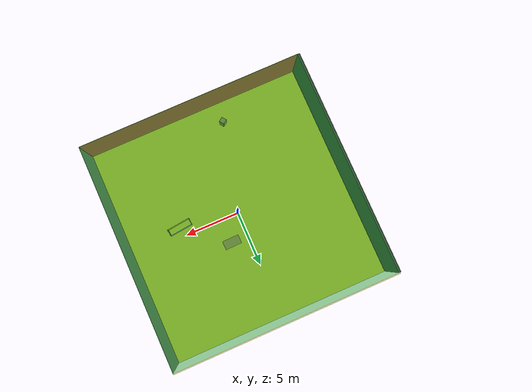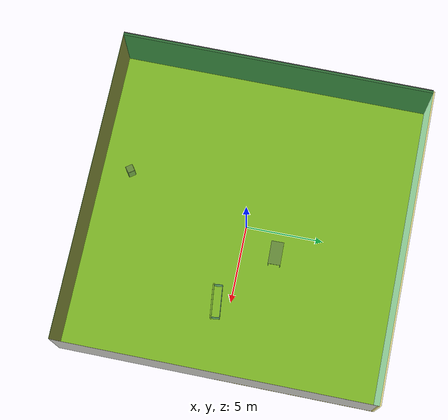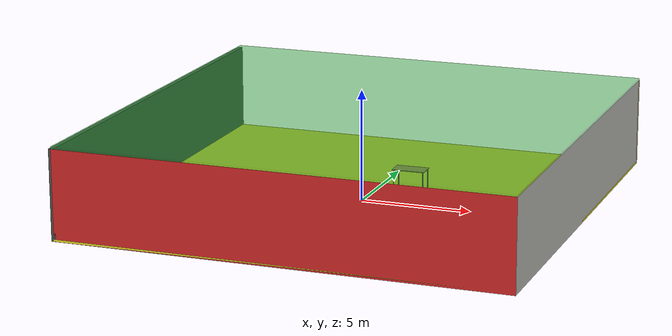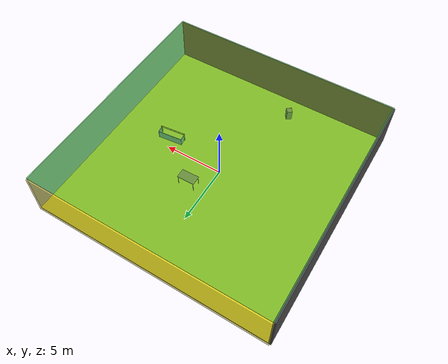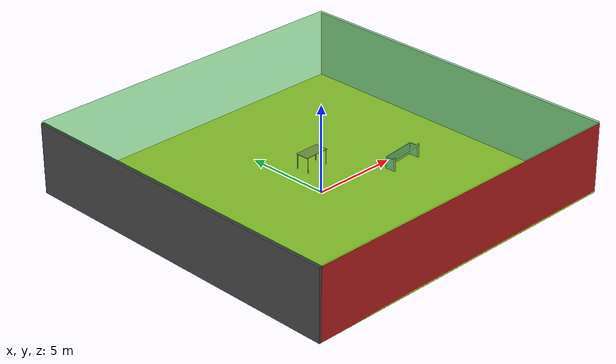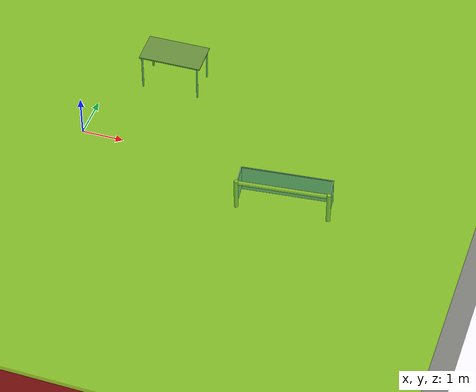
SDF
<sdf version="1.4">
 <world name="default">
  <physics type="ode">
   <max_step_size>0.001</max_step_size>
   <real_time_factor>1</real_time_factor>
   <real_time_update_rate>1000</real_time_update_rate>
   <gravity>0 0 -9.8</gravity>
  </physics>
  <scene><ambient>0.4 0.4 0.4 1</ambient><background>0.7 0.7 0.7 1</background><shadows>1</shadows></scene>
  <model name="Surrounding">
   <static>1</static>
   <link name="Ceiling">
    <collision name="Ceiling_Collision"><geometry><box><size>20 20 0.1</size></box></geometry></collision>
    <visual name="Ceiling_Visual">
     <geometry><box><size>20 20 0.1</size></box></geometry>
     <material>
      <script><uri>file://media/materials/scripts/gazebo.material</uri><name>Gazebo/GreenTransparent</name></script>
     </material>
    </visual>
    <pose>0 0 4.05 0 0 0</pose>
   </link>
   <link name="Wall_South">
    <collision name="Wall_South_Collision">
     <geometry><box><size>20 0 4</size></box></geometry>
     <pose>0 0 2 0 -0 0</pose>
    </collision>
    <visual name="Wall_South_Visual">
     <pose>0 0 2 0 -0 0</pose>
     <geometry><box><size>20 0 4</size></box></geometry>
     <material>
      <script><uri>file://media/materials/scripts/gazebo.material</uri><name>Gazebo/RedBright</name></script>
     </material>
    </visual>
    <velocity_decay><linear>0</linear><angular>0</angular></velocity_decay>
    <pose>0 -10 0 0 -0 0</pose>
   </link>
   <link name="Wall_East">
    <collision name="Wall_21_Collision">
     <geometry><box><size>20 0 4</size></box></geometry>
     <pose>0 0 2 0 -0 0</pose>
    </collision>
    <visual name="Wall_21_Visual">
     <pose>0 0 2 0 -0 0</pose>
     <geometry><box><size>20 0 4</size></box></geometry>
     <material>
      <script><uri>file://media/materials/scripts/gazebo.material</uri><name>Gazebo/CeilingTiled</name></script>
     </material>
    </visual>
    <velocity_decay><linear>0</linear><angular>0</angular></velocity_decay>
    <pose>10 0 0 0 -0 1.5708</pose>
   </link>
   <link name="Wall_North">
    <collision name="Wall_22_Collision">
     <geometry><box><size>20 0.2 4</size></box></geometry>
     <pose>0 0 2 0 -0 0</pose>
    </collision>
    <visual name="Wall_22_Visual">
     <pose>0 0 2 0 -0 0</pose>
     <geometry><box><size>20 0.2 4</size></box></geometry>
     <material>
      <script>
       <uri>file://media/materials/scripts/gazebo.material</uri>
       <name>Gazebo/YellowTransparent</name>
      </script>
     </material>
    </visual>
    <velocity_decay><linear>0</linear><angular>0</angular></velocity_decay>
    <pose>0 10 0 0 -0 0</pose>
   </link>
   <link name="Wall_West">
    <collision name="Wall_23_Collision">
     <geometry><box><size>20 0.2 4</size></box></geometry>
     <pose>0 0 2 0 -0 0</pose>
    </collision>
    <visual name="Wall_23_Visual">
     <pose>0 0 2 0 -0 0</pose>
     <geometry><box><size>20 0.2 4</size></box></geometry>
     <material>
      <script><uri>file://media/materials/scripts/gazebo.material</uri><name>Gazebo/Road</name></script>
     </material>
    </visual>
    <velocity_decay><linear>0</linear><angular>0</angular></velocity_decay>
    <pose>-10 0 0 0 0 -1.5708</pose>
   </link>
   <link name="Ground_link">
    <collision name="collision">
     <pose>0 0 .05 0 -0 0</pose>
     <geometry><box><size>20 20 0.1</size></box></geometry>
    </collision>
    <visual name="visual">
     <pose>0 0 .05 0 -0 0</pose>
     <geometry><box><size>20 20 0.1</size></box></geometry>
     <material>
      <script><uri>file://media/materials/scripts/gazebo.material</uri><name>Gazebo/YellowGlow</name></script>
     </material>
    </visual>
   </link>
   <static>1</static>
  </model>
  <spherical_coordinates>
   <surface_model>EARTH_WGS84</surface_model>
   <latitude_deg>0</latitude_deg>
   <longitude_deg>0</longitude_deg>
   <elevation>0</elevation>
   <heading_deg>0</heading_deg>
  </spherical_coordinates>
  <light name="lightball_0" type="diffuse">
   <diffuse>0.8 0.8 0.8 1</diffuse>
   <specular>0.2 0.2 0.2 1</specular>
   <attenuation>
    <range>100</range>
    <constant>0.7</constant>
    <linear>0.01</linear>
    <quadratic>0.001</quadratic>
   </attenuation>
   <direction>-0.5 0.1 -0.9</direction>
   <pose>-5.27054133608 9.43573599706 3.67768025418 0 0 0</pose>
  </light>
  <light name="lightball_1" type="diffuse">
   <diffuse>0.8 0.8 0.8 1</diffuse>
   <specular>0.2 0.2 0.2 1</specular>
   <attenuation>
    <range>100</range>
    <constant>0.7</constant>
    <linear>0.01</linear>
    <quadratic>0.001</quadratic>
   </attenuation>
   <direction>-0.5 0.1 -0.9</direction>
   <pose>4.5114099709 -1.89885831256 0.694465269245 0 0 0</pose>
  </light>
  <light name="lightball_2" type="diffuse">
   <diffuse>0.8 0.8 0.8 1</diffuse>
   <specular>0.2 0.2 0.2 1</specular>
   <attenuation>
    <range>100</range>
    <constant>0.7</constant>
    <linear>0.01</linear>
    <quadratic>0.001</quadratic>
   </attenuation>
   <direction>-0.5 0.1 -0.9</direction>
   <pose>9.56996645972 6.53253001736 2.57116227503 0 0 0</pose>
  </light>
  <light name="lightball_3" type="diffuse">
   <diffuse>0.8 0.8 0.8 1</diffuse>
   <specular>0.2 0.2 0.2 1</specular>
   <attenuation>
    <range>100</range>
    <constant>0.7</constant>
    <linear>0.01</linear>
    <quadratic>0.001</quadratic>
   </attenuation>
   <direction>-0.5 0.1 -0.9</direction>
   <pose>8.5174624526 -7.1273219421 3.48767409025 0 0 0</pose>
  </light>
  <light name="lightball_4" type="diffuse">
   <diffuse>0.8 0.8 0.8 1</diffuse>
   <specular>0.2 0.2 0.2 1</specular>
   <attenuation>
    <range>100</range>
    <constant>0.7</constant>
    <linear>0.01</linear>
    <quadratic>0.001</quadratic>
   </attenuation>
   <direction>-0.5 0.1 -0.9</direction>
   <pose>3.29156555902 0.00538318821972 3.40287747753 0 0 0</pose>
  </light>
  <light name="lightball_5" type="diffuse">
   <diffuse>0.8 0.8 0.8 1</diffuse>
   <specular>0.2 0.2 0.2 1</specular>
   <attenuation>
    <range>100</range>
    <constant>0.7</constant>
    <linear>0.01</linear>
    <quadratic>0.001</quadratic>
   </attenuation>
   <direction>-0.5 0.1 -0.9</direction>
   <pose>3.78682793298 -6.53954333949 2.84482440262 0 0 0</pose>
  </light>
  <light name="lightball_6" type="diffuse">
   <diffuse>0.8 0.8 0.8 1</diffuse>
   <specular>0.2 0.2 0.2 1</specular>
   <attenuation>
    <range>100</range>
    <constant>0.7</constant>
    <linear>0.01</linear>
    <quadratic>0.001</quadratic>
   </attenuation>
   <direction>-0.5 0.1 -0.9</direction>
   <pose>3.91017975607 -1.64697362595 2.35189713271 0 0 0</pose>
  </light>
  <light name="lightball_7" type="diffuse">
   <diffuse>0.8 0.8 0.8 1</diffuse>
   <specular>0.2 0.2 0.2 1</specular>
   <attenuation>
    <range>100</range>
    <constant>0.7</constant>
    <linear>0.01</linear>
    <quadratic>0.001</quadratic>
   </attenuation>
   <direction>-0.5 0.1 -0.9</direction>
   <pose>1.67872108614 -8.04776728729 2.18921500598 0 0 0</pose>
  </light>
  <light name="lightball_8" type="diffuse">
   <diffuse>0.8 0.8 0.8 1</diffuse>
   <specular>0.2 0.2 0.2 1</specular>
   <attenuation>
    <range>100</range>
    <constant>0.7</constant>
    <linear>0.01</linear>
    <quadratic>0.001</quadratic>
   </attenuation>
   <direction>-0.5 0.1 -0.9</direction>
   <pose>-2.98285169751 7.87193508754 1.96974825823 0 0 0</pose>
  </light>
  <include><uri>model://cabinet</uri><pose>-2.09732754879 -8.10156073722 0 0 0 0.620441340828</pose></include>
  <include><uri>model://table</uri><pose>1.51363995406 2.21560121728 0 0 0 0.0227274481033</pose></include>
  <include>
   <uri>model://robocup_3Dsim_goal</uri>
   <pose>5.2573500339 -1.13786838699 0 0 0 1.6787945011</pose>
  </include>
 </world>
</sdf>

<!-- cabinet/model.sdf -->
<sdf version="1.5">
  <model name="cabinet">
    <static>true</static>
    <link name="cabinet_bottom_plate">
      <inertial>
        <pose>0 0 -1 0 0 0</pose>
        <inertia>
          <ixx>2.050000</ixx>
          <ixy>0</ixy>
          <ixz>0</ixz>
          <iyy>2.050000</iyy>
          <iyz>0</iyz>
          <izz>2.050000</izz>
        </inertia>
        <mass>25.000000</mass>
      </inertial>
      <collision name="cabinet_bottom_plate_geom">
        <pose>0 0 0.010000 0 0 0</pose>
        <geometry>
          <box>
            <size>0.450000 0.450000 0.020000</size>
          </box>
        </geometry>
      </collision>
      <visual name="cabinet_bottom_plate_geom_visual">
        <pose>0 0 0.010000 0 0 0</pose>
        <geometry>
          <box>
            <size>0.450000 0.450000 0.020000</size>
          </box>
        </geometry>
        <material>
          <script>
            <uri>model://media/materials/scripts/gazebo.material</uri>
            <name>Gazebo/Wood</name>
          </script>
        </material>
      </visual>
      <collision name="cabinet_bottom_plate_geom_cabinet_back_plate">
        <pose>0.235000 0 0.510000 0 0 0</pose>
        <geometry>
          <box>
            <size>0.020000 0.450000 1.020000</size>
          </box>
        </geometry>
      </collision>
      <visual name="cabinet_bottom_plate_geom_cabinet_back_plate_visual">
        <pose>0.235000 0 0.510000 0 0 0</pose>
        <geometry>
          <box>
            <size>0.020000 0.450000 1.020000</size>
          </box>
        </geometry>
        <material>
          <script>
            <uri>model://media/materials/scripts/gazebo.material</uri>
            <name>Gazebo/Wood</name>
          </script>
        </material>
      </visual>
      <collision name="cabinet_bottom_plate_geom_cabinet_left_plate">
        <pose>0 0.235000 0.510000 0 0 0</pose>
        <geometry>
          <box>
            <size>0.450000 0.020000 1.020000</size>
          </box>
        </geometry>
      </collision>
      <visual name="cabinet_bottom_plate_geom_cabinet_left_plate_visual">
        <pose>0 0.235000 0.510000 0 0 0</pose>
        <geometry>
          <box>
            <size>0.450000 0.020000 1.020000</size>
          </box>
        </geometry>
        <material>
          <script>
            <uri>model://media/materials/scripts/gazebo.material</uri>
            <name>Gazebo/Wood</name>
          </script>
        </material>
      </visual>
      <collision name="cabinet_bottom_plate_geom_cabinet_middle_plate">
        <pose>0 0 0.510000 0 0 0</pose>
        <geometry>
          <box>
            <size>0.450000 0.450000 0.020000</size>
          </box>
        </geometry>
      </collision>
      <visual name="cabinet_bottom_plate_geom_cabinet_middle_plate_visual">
        <pose>0 0 0.510000 0 0 0</pose>
        <geometry>
          <box>
            <size>0.450000 0.450000 0.020000</size>
          </box>
        </geometry>
        <material>
          <script>
            <uri>model://media/materials/scripts/gazebo.material</uri>
            <name>Gazebo/Wood</name>
          </script>
        </material>
      </visual>
      <collision name="cabinet_bottom_plate_geom_cabinet_right_plate">
        <pose>0 -0.235000 0.510000 0 0 0</pose>
        <geometry>
          <box>
            <size>0.450000 0.020000 1.020000</size>
          </box>
        </geometry>
      </collision>
      <visual name="cabinet_bottom_plate_geom_cabinet_right_plate_visual">
        <pose>0 -0.235000 0.510000 0 0 0</pose>
        <geometry>
          <box>
            <size>0.450000 0.020000 1.020000</size>
          </box>
        </geometry>
        <material>
          <script>
            <uri>model://media/materials/scripts/gazebo.material</uri>
            <name>Gazebo/Wood</name>
          </script>
        </material>
      </visual>
      <collision name="cabinet_bottom_plate_geom_cabinet_top_plate">
        <pose>0 0 1.010000 0 0 0</pose>
        <geometry>
          <box>
            <size>0.450000 0.450000 0.020000</size>
          </box>
        </geometry>
      </collision>
      <visual name="cabinet_bottom_plate_geom_cabinet_top_plate_visual">
        <pose>0 0 1.010000 0 0 0</pose>
        <geometry>
          <box>
            <size>0.450000 0.450000 0.020000</size>
          </box>
        </geometry>
        <material>
          <script>
            <uri>model://media/materials/scripts/gazebo.material</uri>
            <name>Gazebo/Wood</name>
          </script>
        </material>
      </visual>
    </link>
  </model>
</sdf>

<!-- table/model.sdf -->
<sdf version="1.5">
  <model name="table">
    <static>true</static>
    <link name="link">
      <collision name="surface">
        <pose>0 0 1.0 0 0 0</pose>
        <geometry>
          <box>
            <size>1.5 0.8 0.03</size>
          </box>
        </geometry>
        <surface>
          <friction>
            <ode>
              <mu>0.6</mu>
              <mu2>0.6</mu2>
            </ode>
          </friction>
        </surface>
      </collision>
      <visual name="visual1">
        <pose>0 0 1.0 0 0 0</pose>
        <geometry>
          <box>
            <size>1.5 0.8 0.03</size>
          </box>
        </geometry>
        <material>
          <script>
            <uri>model://media/materials/scripts/gazebo.material</uri>
            <name>Gazebo/Wood</name>
          </script>
        </material>
      </visual>
      <collision name="front_left_leg">
        <pose>0.68 0.38 0.5 0 0 0</pose>
        <geometry>
          <cylinder>
            <radius>0.02</radius>
            <length>1.0</length>
          </cylinder>
        </geometry>
      </collision>
      <visual name="front_left_leg">
        <pose>0.68 0.38 0.5 0 0 0</pose>
        <geometry>
          <cylinder>
            <radius>0.02</radius>
            <length>1.0</length>
          </cylinder>
        </geometry>
        <material>
          <script>
            <uri>model://media/materials/scripts/gazebo.material</uri>
            <name>Gazebo/Grey</name>
          </script>
        </material>
      </visual>
      <collision name="front_right_leg">
        <pose>0.68 -0.38 0.5 0 0 0</pose>
        <geometry>
          <cylinder>
            <radius>0.02</radius>
            <length>1.0</length>
          </cylinder>
        </geometry>
      </collision>
      <visual name="front_right_leg">
        <pose>0.68 -0.38 0.5 0 0 0</pose>
        <geometry>
          <cylinder>
            <radius>0.02</radius>
            <length>1.0</length>
          </cylinder>
        </geometry>
        <material>
          <script>
            <uri>model://media/materials/scripts/gazebo.material</uri>
            <name>Gazebo/Grey</name>
          </script>
        </material>
      </visual>
      <collision name="back_right_leg">
        <pose>-0.68 -0.38 0.5 0 0 0</pose>
        <geometry>
          <cylinder>
            <radius>0.02</radius>
            <length>1.0</length>
          </cylinder>
        </geometry>
      </collision>
      <visual name="back_right_leg">
        <pose>-0.68 -0.38 0.5 0 0 0</pose>
        <geometry>
          <cylinder>
            <radius>0.02</radius>
            <length>1.0</length>
          </cylinder>
        </geometry>
        <material>
          <script>
            <uri>model://media/materials/scripts/gazebo.material</uri>
            <name>Gazebo/Grey</name>
          </script>
        </material>
      </visual>
      <collision name="back_left_leg">
        <pose>-0.68 0.38 0.5 0 0 0</pose>
        <geometry>
          <cylinder>
            <radius>0.02</radius>
            <length>1.0</length>
          </cylinder>
        </geometry>
      </collision>
      <visual name="back_left_leg">
        <pose>-0.68 0.38 0.5 0 0 0</pose>
        <geometry>
          <cylinder>
            <radius>0.02</radius>
            <length>1.0</length>
          </cylinder>
        </geometry>
        <material>
          <script>
            <uri>model://media/materials/scripts/gazebo.material</uri>
            <name>Gazebo/Grey</name>
          </script>
        </material>
      </visual>
    </link>
  </model>
</sdf>

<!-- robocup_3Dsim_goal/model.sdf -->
<sdf version="1.5">
  <model name="robocup_3d_goal">
    <static>true</static>
    <link name="left_post">
      <pose>0 1.05 0.45 0 0 0</pose>
      <collision name="collision">
        <geometry>
          <cylinder>
            <radius>0.05</radius>
            <length>0.9</length>
          </cylinder>
        </geometry>
      </collision>
      <visual name="visual">
        <geometry>
          <cylinder>
            <radius>0.05</radius>
            <length>0.9</length>
          </cylinder>
        </geometry>
        <material>
          <script>
            <uri>file://media/materials/scripts/gazebo.material</uri>
            <name>Gazebo/ZincYellow</name>
          </script>
        </material>
      </visual>
    </link>
    <link name="left_support_horiz_lower">
      <pose>0.30 1.05 0.01 0 0 0</pose>
      <collision name="collision">
        <geometry>
          <box>
            <size>0.50 0.02 0.02</size>
          </box>
        </geometry>
      </collision>
      <visual name="visual">
        <geometry>
          <box>
            <size>0.50 0.02 0.02</size>
          </box>
        </geometry>
        <material>
          <script>
            <uri>file://media/materials/scripts/gazebo.material</uri>
            <name>Gazebo/White</name>
          </script>
        </material>
      </visual>
    </link>
    <link name="left_support_horiz_upper">
      <pose>0.30 1.05 0.79 0 0 0</pose>
      <collision name="collision">
        <geometry>
          <box>
            <size>0.50 0.02 0.02</size>
          </box>
        </geometry>
      </collision>
      <visual name="visual">
        <geometry>
          <box>
            <size>0.50 0.02 0.02</size>
          </box>
        </geometry>
        <material>
          <script>
            <uri>file://media/materials/scripts/gazebo.material</uri>
            <name>Gazebo/White</name>
          </script>
        </material>
      </visual>
    </link>
    <link name="left_support_vertical">
      <pose>0.56 1.05 0.4 0 1.5708 0</pose>
      <collision name="collision">
        <geometry>
          <box>
            <size>0.80 0.02 0.02</size>
          </box>
        </geometry>
      </collision>
      <visual name="visual">
        <geometry>
          <box>
            <size>0.80 0.02 0.02</size>
          </box>
        </geometry>
        <material>
          <script>
            <uri>file://media/materials/scripts/gazebo.material</uri>
            <name>Gazebo/White</name>
          </script>
        </material>
      </visual>
    </link>
    <link name="right_support_horiz_lower">
      <pose>0.30 -1.05 0.01 0 0 0</pose>
      <collision name="collision">
        <geometry>
          <box>
            <size>0.50 0.02 0.02</size>
          </box>
        </geometry>
      </collision>
      <visual name="visual">
        <geometry>
          <box>
            <size>0.50 0.02 0.02</size>
          </box>
        </geometry>
        <material>
          <script>
            <uri>file://media/materials/scripts/gazebo.material</uri>
            <name>Gazebo/White</name>
          </script>
        </material>
      </visual>
    </link>
    <link name="right_support_horiz_upper">
      <pose>0.30 -1.05 0.79 0 0 0</pose>
      <collision name="collision">
        <geometry>
          <box>
            <size>0.50 0.02 0.02</size>
          </box>
        </geometry>
      </collision>
      <visual name="visual">
        <geometry>
          <box>
            <size>0.50 0.02 0.02</size>
          </box>
        </geometry>
        <material>
          <script>
            <uri>file://media/materials/scripts/gazebo.material</uri>
            <name>Gazebo/White</name>
          </script>
        </material>
      </visual>
    </link>
    <link name="right_support_vertical">
      <pose>0.56 -1.05 0.4 0 1.5708 0</pose>
      <collision name="collision">
        <geometry>
          <box>
            <size>0.80 0.02 0.02</size>
          </box>
        </geometry>
      </collision>
      <visual name="visual">
        <geometry>
          <box>
            <size>0.80 0.02 0.02</size>
          </box>
        </geometry>
        <material>
          <script>
            <uri>file://media/materials/scripts/gazebo.material</uri>
            <name>Gazebo/White</name>
          </script>
        </material>
      </visual>
    </link>
    <link name="center_support_horiz_lower">
      <pose>0.56 0 0.01 0 1.5708 0</pose>
      <collision name="collision">
        <geometry>
          <box>
            <size>0.02 2.08 0.02</size>
          </box>
        </geometry>
      </collision>
      <visual name="visual">
        <geometry>
          <box>
            <size>0.02 2.08 0.02</size>
          </box>
        </geometry>
        <material>
          <script>
            <uri>file://media/materials/scripts/gazebo.material</uri>
            <name>Gazebo/White</name>
          </script>
        </material>
      </visual>
    </link>
    <link name="center_support_horiz_upper">
      <pose>0.56 0 0.79 0 1.5708 0</pose>
      <collision name="collision">
        <geometry>
          <box>
            <size>0.02 2.08 0.02</size>
          </box>
        </geometry>
      </collision>
      <visual name="visual">
        <geometry>
          <box>
            <size>0.02 2.08 0.02</size>
          </box>
        </geometry>
        <material>
          <script>
            <uri>file://media/materials/scripts/gazebo.material</uri>
            <name>Gazebo/White</name>
          </script>
        </material>
      </visual>
    </link>
    <link name="right_post">
      <pose>0 -1.05 0.45 0 0 0</pose>
      <collision name="collision">
        <geometry>
          <cylinder>
            <radius>0.05</radius>
            <length>0.9</length>
          </cylinder>
        </geometry>
      </collision>
      <visual name="visual">
        <geometry>
          <cylinder>
            <radius>0.05</radius>
            <length>0.9</length>
          </cylinder>
        </geometry>
        <material>
          <script>
            <uri>file://media/materials/scripts/gazebo.material</uri>
            <name>Gazebo/ZincYellow</name>
          </script>
        </material>
      </visual>
    </link>
    <link name="crossbar">
      <pose>0 0 0.85 1.57 1.57 0</pose>
      <collision name="collision">
        <geometry>
          <cylinder>
            <radius>0.05</radius>
            <length>2.0</length>
          </cylinder>
        </geometry>
      </collision>
      <visual name="visual">
        <geometry>
          <cylinder>
            <radius>0.05</radius>
            <length>2.0</length>
          </cylinder>
        </geometry>
        <material>
          <script>
            <uri>file://media/materials/scripts/gazebo.material</uri>
            <name>Gazebo/ZincYellow</name>
          </script>
        </material>
      </visual>
    </link>
    <link name="center_net">
      <pose>0.56 0 0.40 0 0 0</pose>
      <collision name="collision">
        <geometry>
          <box>
            <size>0.01 2.1 0.80</size>
          </box>
        </geometry>
      </collision>
      <visual name="visual">
        <geometry>
          <box>
            <size>0.01 2.1 0.80</size>
          </box>
        </geometry>
        <material>
          <script>
            <uri>model://../model_source/models/robocup09_spl_field/materials/scripts/</uri>
            <uri>model://../model_source/models/robocup09_spl_field/materials/textures/</uri>
            <name>RoboCup/Net</name>
          </script>
        </material>
      </visual>
    </link>
    <link name="left_net">
      <pose>0.30 1.05 0.40 0 0 0</pose>
      <collision name="collision">
        <geometry>
          <box>
            <size>0.50 0.01 0.76</size>
          </box>
        </geometry>
      </collision>
      <visual name="visual">
        <geometry>
          <box>
            <size>0.50 0.01 0.76</size>
          </box>
        </geometry>
        <material>
          <script>
            <uri>model://../model_source/models/robocup09_spl_field/materials/scripts/</uri>
            <uri>model://../model_source/models/robocup09_spl_field/materials/textures/</uri>
            <name>RoboCup/Net</name>
          </script>
        </material>
      </visual>
    </link>
    <link name="right_net">
      <pose>0.30 -1.05 0.40 0 0 0</pose>
      <collision name="collision">
        <geometry>
          <box>
            <size>0.50 0.01 0.76</size>
          </box>
        </geometry>
      </collision>
      <visual name="visual">
        <geometry>
          <box>
            <size>0.50 0.01 0.76</size>
          </box>
        </geometry>
        <material>
          <script>
            <uri>model://../model_source/models/robocup09_spl_field/materials/scripts/</uri>
            <uri>model://../model_source/models/robocup09_spl_field/materials/textures/</uri>
            <name>RoboCup/Net</name>
          </script>
        </material>
      </visual>
    </link>
  </model>
</sdf>
